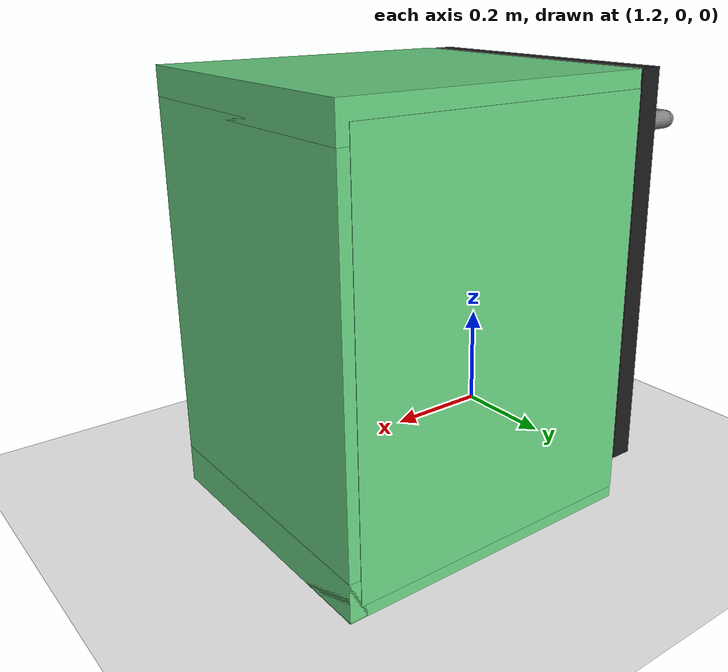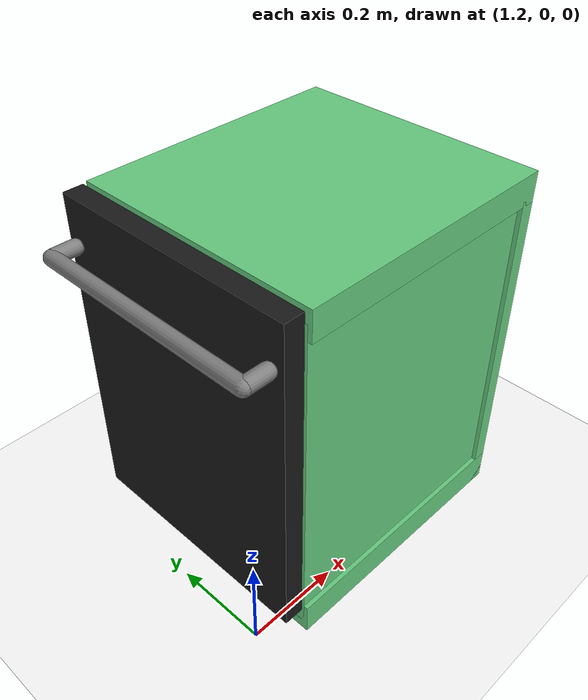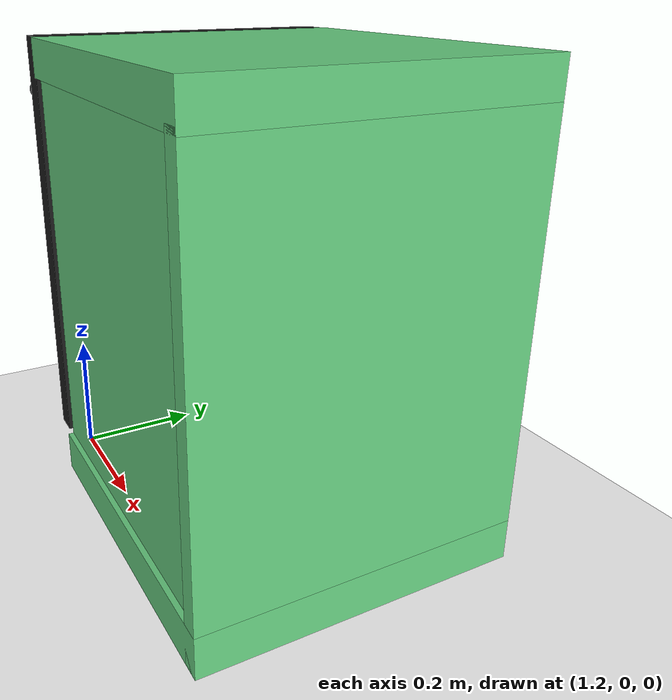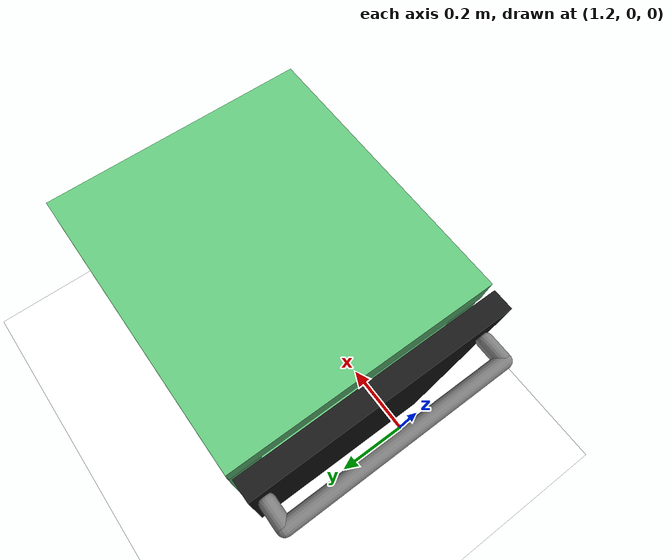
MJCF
<!-- There is a repo with household objects in mujoco : furniture sim -->

<mujoco model="iai_kitchen">
  <compiler angle="radian" meshdir="assets" autolimits="true" balanceinertia="true" />

  <asset>
    <texture builtin="checker" height="512" name="texplane" rgb1=".2 .3 .4" rgb2=".1 .15 .2" type="2d" width="512" />
    <material name="MatPlane" reflectance="0.05" shininess="0.01" specular="0.01" texrepeat="1 1" texture="texplane" texuniform="true" />
    <material name="black" rgba="0.25 0.25 0.25 1"/>
    <mesh name="SinkArea" file="SinkArea.obj"/>
    <mesh name="Sink" file="Sink.obj"/>
    <mesh name="Panel_60" file="Panel_60.obj"/>
    <mesh name="Drawer_60_58" file="Drawer_60_58.obj"/>
    <mesh name="Handle60" file="handle60_rot.stl"/>
    <mesh name="Drawer_80_14" file="Drawer_80_14.obj"/>
    <mesh name="Handle80" file="Handle80.obj"/>
    <mesh name="Drawer_80_29" file="Drawer_80_29.obj"/>
    <mesh name="DishWasher" file="dishwasher_rot.stl"/>
    <mesh name="DishWasherDoor" file="dishwasher_door.stl"/>
  </asset>
   <default>
        <default class="viz_dishwasher" >
            <geom group="1"  contype="0" conaffinity="0"/>
        </default>
        <default class="col">
            <geom rgba=".4 .8 .5 1" group="2" />
            <!-- contype="1" conaffinity="0" -->
        </default>
   </default>
  <worldbody>
      <light pos="0 0 1000" castshadow="false" />
      <geom name="ground_plane" type="plane" material="MatPlane" size="5 5 10" rgba="1 1 1 1"/>
  </worldbody>

  <worldbody>

    <!-- Check urdf and make this dishwash -->
    <!-- Check what does group, contype and conaffinity does -->
    <body name="dishwasher_main" pos="1.555 0.2 0.42" quat="0 0 0 1">
        <geom name="dish_top" type="box" pos="0.00 0 .3" size=".28 .26 .030" class="col"/>
         <geom name="dish_bottom" type="box" pos="0.00 0 -.394" size=".28 .26 .04" class="col"/>
        <geom name="dish_back" type="box" pos="-0.265 0 -0.07" size=".015 .26 .35" class="col"/>
        <geom name="dish_right" type="box" pos="0.01 0.22 -0.05" size=".27 .031 .35" class="col"/>
        <geom name="dish_left" type="box" pos="0.01 -0.23 -0.05" size=".27 .031 .35" class="col"/>

        <body name="sink_area_dish_washer_door"  pos="0.3 0 -0.34" quat="0.707 -0.707107 0 0">
          <inertial pos="0 0 0" mass="2" diaginertia="1 1 1"/>
          <geom type="box" size="0.02 0.34 0.255" pos="0.01 -0.33 0.0" rgba=".1 .1 .1 1" />
          <joint name="sink_area_dish_washer_door_joint" type="hinge" axis="0 0 1" range="0 1.57" limited="true" damping="0.01" frictionloss="0.01" stiffness="0.01"/>
            <geom type="capsule" size="0.015 0.23" pos="0.085 -0.58 0" />
            <geom type="capsule" size=".015 .022" pos="0.061 -0.58 -0.23" quat="0.7071 0 0.7071 0" />
            <geom type="capsule" size=".015 .022" pos="0.061 -0.58 0.23" quat="0.7071 0 0.7071 0" />
      </body>
    </body>

  </worldbody>
</mujoco>
